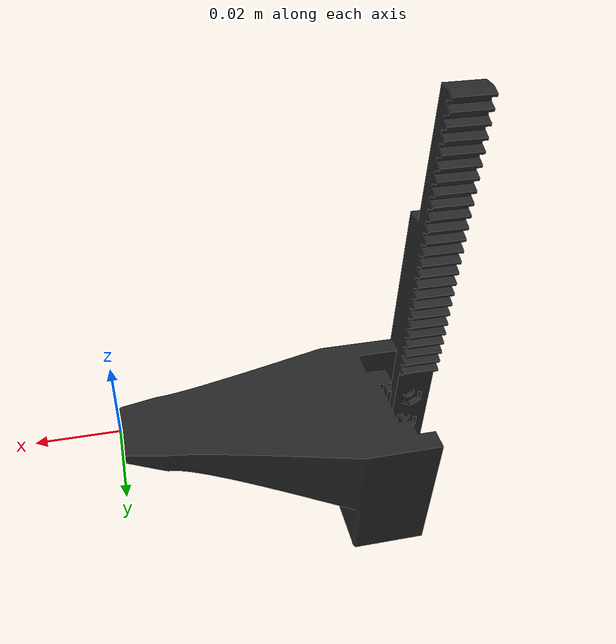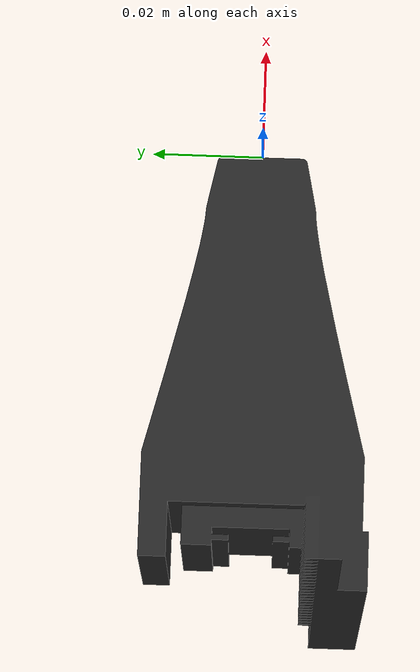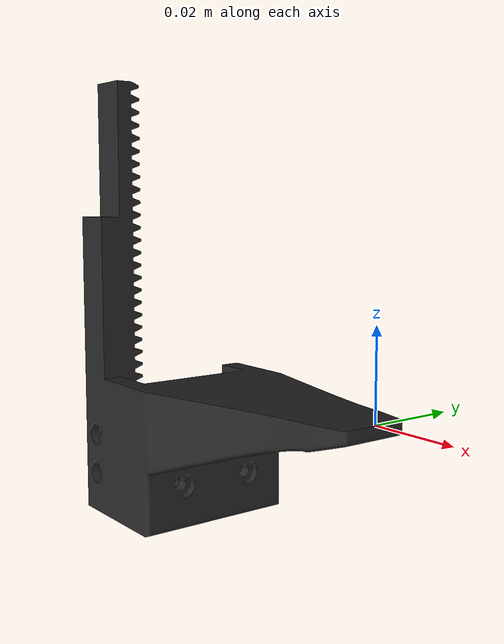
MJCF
<mujoco model="gripper_2">
  <default>
    <default class="visual">
      <geom group="2" type="mesh" contype="0" conaffinity="0"/>
    </default>
    <default class="collision">
      <geom group="3" type="mesh"/>
    </default>
  </default>
  <asset>
    <material name="black_shell" specular="0.5" shininess="0.0" rgba="0.150000 0.150000 0.150000 1.000000"/>
    <mesh file="gripper_2.obj"/>
    <mesh file="gripper_2_collision_0.obj"/>
    <mesh file="gripper_2_collision_1.obj"/>
  </asset>
  <worldbody>
    <body name="gripper_2">
      <geom material="black_shell" mesh="gripper_2" class="visual"/>
      <geom mesh="gripper_2_collision_0" rgba="0.84242254877437 0.9093089972376723 0.07103465669923925 1" class="collision"/>
      <geom mesh="gripper_2_collision_1" rgba="0.7725398400705703 0.16448175751867333 0.7695763793761039 1" class="collision"/>
    </body>
  </worldbody>
</mujoco>
